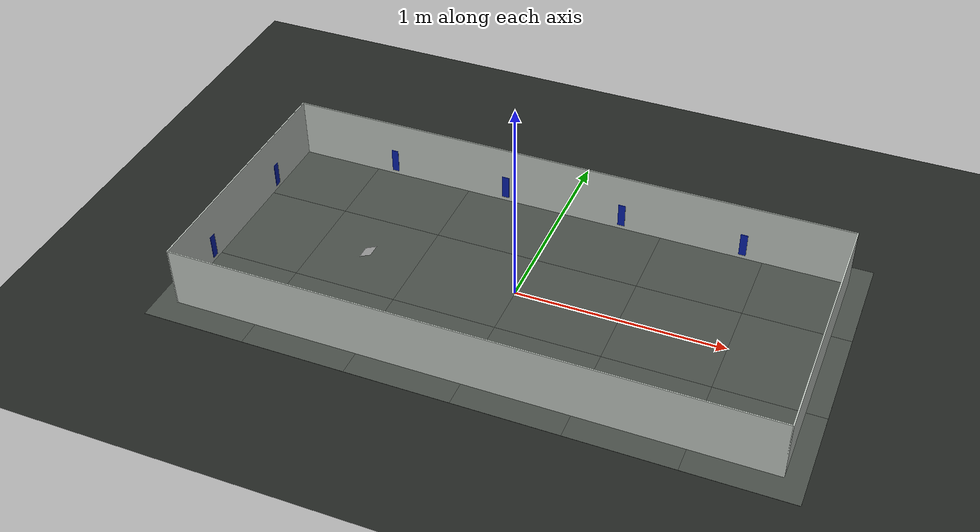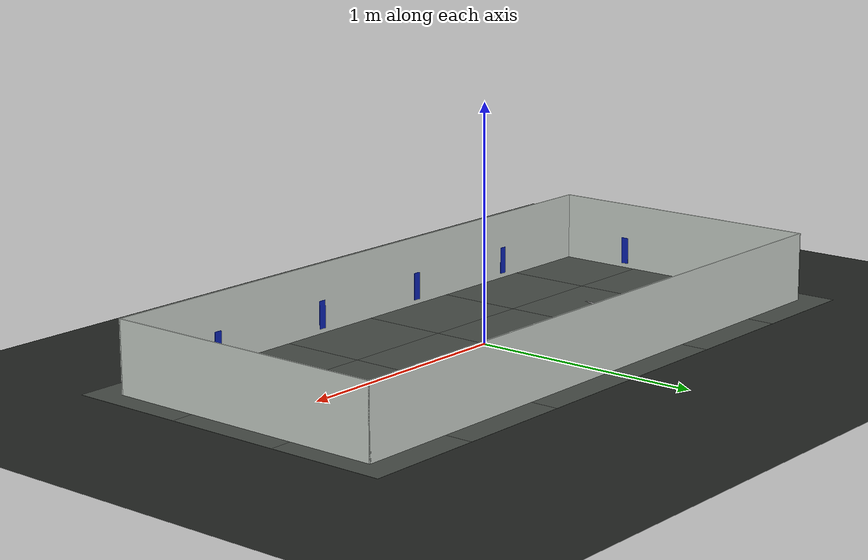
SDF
<sdf version="1.6">
 <world name="map_v2_fleet">
  <plugin filename="gz-sim-physics-system" name="gz::sim::systems::Physics">
   <engine><filename>gz-physics-dartsim-plugin</filename></engine>
  </plugin>
  <plugin filename="gz-sim-user-commands-system" name="gz::sim::systems::UserCommands"/>
  <plugin filename="gz-sim-scene-broadcaster-system" name="gz::sim::systems::SceneBroadcaster"/>
  <plugin filename="gz-sim-sensors-system" name="gz::sim::systems::Sensors">
   <render_engine>ogre2</render_engine>
  </plugin>
  <plugin filename="gz-sim-imu-system" name="gz::sim::systems::Imu"/>
  <scene><background>0.35 0.30 0.30 1</background></scene>
  <light type="directional" name="sun">
   <cast_shadows>false</cast_shadows>
   <pose>0 0 10 0 0 0</pose>
   <diffuse>0.9 0.9 0.9 1</diffuse>
   <specular>0.2 0.2 0.2 1</specular>
   <direction>-0.4 0.2 -0.9</direction>
  </light>
  <model name="ground_plane">
   <static>true</static>
   <link name="link">
    <collision name="collision">
     <geometry><plane><normal>0 0 1</normal><size>100 100</size></plane></geometry>
    </collision>
    <visual name="visual">
     <geometry><plane><normal>0 0 1</normal><size>100 100</size></plane></geometry>
     <material><ambient>0.13 0.14 0.13 1</ambient><diffuse>0.13 0.14 0.13 1</diffuse></material>
    </visual>
   </link>
  </model>
  <model name="carpet">
   <static>true</static>
   <pose>0 0 0.0003 0 0 0</pose>
   <link name="link">
    <visual name="tile_0_0">
     <pose>-1.250 -0.500 0 0 0 0</pose>
     <geometry><plane><normal>0 0 1</normal><size>0.5 0.5</size></plane></geometry>
     <material>
      <ambient>0.27 0.29 0.27 1</ambient>
      <diffuse>0.27 0.29 0.27 1</diffuse>
      <pbr><metal><albedo_map>model://control/map/map_v2_fleet/textures/carpet_grey.png</albedo_map></metal></pbr>
     </material>
    </visual>
    <visual name="tile_0_1">
     <pose>-1.250 0.000 0 0 0 0</pose>
     <geometry><plane><normal>0 0 1</normal><size>0.5 0.5</size></plane></geometry>
     <material>
      <ambient>0.27 0.29 0.27 1</ambient>
      <diffuse>0.27 0.29 0.27 1</diffuse>
      <pbr><metal><albedo_map>model://control/map/map_v2_fleet/textures/carpet_grey.png</albedo_map></metal></pbr>
     </material>
    </visual>
    <visual name="tile_0_2">
     <pose>-1.250 0.500 0 0 0 0</pose>
     <geometry><plane><normal>0 0 1</normal><size>0.5 0.5</size></plane></geometry>
     <material>
      <ambient>0.27 0.29 0.27 1</ambient>
      <diffuse>0.27 0.29 0.27 1</diffuse>
      <pbr><metal><albedo_map>model://control/map/map_v2_fleet/textures/carpet_grey.png</albedo_map></metal></pbr>
     </material>
    </visual>
    <visual name="tile_1_0">
     <pose>-0.750 -0.500 0 0 0 0</pose>
     <geometry><plane><normal>0 0 1</normal><size>0.5 0.5</size></plane></geometry>
     <material>
      <ambient>0.27 0.29 0.27 1</ambient>
      <diffuse>0.27 0.29 0.27 1</diffuse>
      <pbr><metal><albedo_map>model://control/map/map_v2_fleet/textures/carpet_grey.png</albedo_map></metal></pbr>
     </material>
    </visual>
    <visual name="tile_1_1">
     <pose>-0.750 0.000 0 0 0 0</pose>
     <geometry><plane><normal>0 0 1</normal><size>0.5 0.5</size></plane></geometry>
     <material>
      <ambient>0.27 0.29 0.27 1</ambient>
      <diffuse>0.27 0.29 0.27 1</diffuse>
      <pbr><metal><albedo_map>model://control/map/map_v2_fleet/textures/carpet_grey.png</albedo_map></metal></pbr>
     </material>
    </visual>
    <visual name="tile_1_2">
     <pose>-0.750 0.500 0 0 0 0</pose>
     <geometry><plane><normal>0 0 1</normal><size>0.5 0.5</size></plane></geometry>
     <material>
      <ambient>0.27 0.29 0.27 1</ambient>
      <diffuse>0.27 0.29 0.27 1</diffuse>
      <pbr><metal><albedo_map>model://control/map/map_v2_fleet/textures/carpet_grey.png</albedo_map></metal></pbr>
     </material>
    </visual>
    <visual name="tile_2_0">
     <pose>-0.250 -0.500 0 0 0 0</pose>
     <geometry><plane><normal>0 0 1</normal><size>0.5 0.5</size></plane></geometry>
     <material>
      <ambient>0.27 0.29 0.27 1</ambient>
      <diffuse>0.27 0.29 0.27 1</diffuse>
      <pbr><metal><albedo_map>model://control/map/map_v2_fleet/textures/carpet_grey.png</albedo_map></metal></pbr>
     </material>
    </visual>
    <visual name="tile_2_1">
     <pose>-0.250 0.000 0 0 0 0</pose>
     <geometry><plane><normal>0 0 1</normal><size>0.5 0.5</size></plane></geometry>
     <material>
      <ambient>0.27 0.29 0.27 1</ambient>
      <diffuse>0.27 0.29 0.27 1</diffuse>
      <pbr><metal><albedo_map>model://control/map/map_v2_fleet/textures/carpet_grey.png</albedo_map></metal></pbr>
     </material>
    </visual>
    <visual name="tile_2_2">
     <pose>-0.250 0.500 0 0 0 0</pose>
     <geometry><plane><normal>0 0 1</normal><size>0.5 0.5</size></plane></geometry>
     <material>
      <ambient>0.27 0.29 0.27 1</ambient>
      <diffuse>0.27 0.29 0.27 1</diffuse>
      <pbr><metal><albedo_map>model://control/map/map_v2_fleet/textures/carpet_grey.png</albedo_map></metal></pbr>
     </material>
    </visual>
    <visual name="tile_3_0">
     <pose>0.250 -0.500 0 0 0 0</pose>
     <geometry><plane><normal>0 0 1</normal><size>0.5 0.5</size></plane></geometry>
     <material>
      <ambient>0.27 0.29 0.27 1</ambient>
      <diffuse>0.27 0.29 0.27 1</diffuse>
      <pbr><metal><albedo_map>model://control/map/map_v2_fleet/textures/carpet_grey.png</albedo_map></metal></pbr>
     </material>
    </visual>
    <visual name="tile_3_1">
     <pose>0.250 0.000 0 0 0 0</pose>
     <geometry><plane><normal>0 0 1</normal><size>0.5 0.5</size></plane></geometry>
     <material>
      <ambient>0.27 0.29 0.27 1</ambient>
      <diffuse>0.27 0.29 0.27 1</diffuse>
      <pbr><metal><albedo_map>model://control/map/map_v2_fleet/textures/carpet_grey.png</albedo_map></metal></pbr>
     </material>
    </visual>
    <visual name="tile_3_2">
     <pose>0.250 0.500 0 0 0 0</pose>
     <geometry><plane><normal>0 0 1</normal><size>0.5 0.5</size></plane></geometry>
     <material>
      <ambient>0.27 0.29 0.27 1</ambient>
      <diffuse>0.27 0.29 0.27 1</diffuse>
      <pbr><metal><albedo_map>model://control/map/map_v2_fleet/textures/carpet_grey.png</albedo_map></metal></pbr>
     </material>
    </visual>
    <visual name="tile_4_0">
     <pose>0.750 -0.500 0 0 0 0</pose>
     <geometry><plane><normal>0 0 1</normal><size>0.5 0.5</size></plane></geometry>
     <material>
      <ambient>0.27 0.29 0.27 1</ambient>
      <diffuse>0.27 0.29 0.27 1</diffuse>
      <pbr><metal><albedo_map>model://control/map/map_v2_fleet/textures/carpet_grey.png</albedo_map></metal></pbr>
     </material>
    </visual>
    <visual name="tile_4_1">
     <pose>0.750 0.000 0 0 0 0</pose>
     <geometry><plane><normal>0 0 1</normal><size>0.5 0.5</size></plane></geometry>
     <material>
      <ambient>0.27 0.29 0.27 1</ambient>
      <diffuse>0.27 0.29 0.27 1</diffuse>
      <pbr><metal><albedo_map>model://control/map/map_v2_fleet/textures/carpet_grey.png</albedo_map></metal></pbr>
     </material>
    </visual>
    <visual name="tile_4_2">
     <pose>0.750 0.500 0 0 0 0</pose>
     <geometry><plane><normal>0 0 1</normal><size>0.5 0.5</size></plane></geometry>
     <material>
      <ambient>0.27 0.29 0.27 1</ambient>
      <diffuse>0.27 0.29 0.27 1</diffuse>
      <pbr><metal><albedo_map>model://control/map/map_v2_fleet/textures/carpet_grey.png</albedo_map></metal></pbr>
     </material>
    </visual>
    <visual name="tile_5_0">
     <pose>1.250 -0.500 0 0 0 0</pose>
     <geometry><plane><normal>0 0 1</normal><size>0.5 0.5</size></plane></geometry>
     <material>
      <ambient>0.27 0.29 0.27 1</ambient>
      <diffuse>0.27 0.29 0.27 1</diffuse>
      <pbr><metal><albedo_map>model://control/map/map_v2_fleet/textures/carpet_grey.png</albedo_map></metal></pbr>
     </material>
    </visual>
    <visual name="tile_5_1">
     <pose>1.250 0.000 0 0 0 0</pose>
     <geometry><plane><normal>0 0 1</normal><size>0.5 0.5</size></plane></geometry>
     <material>
      <ambient>0.27 0.29 0.27 1</ambient>
      <diffuse>0.27 0.29 0.27 1</diffuse>
      <pbr><metal><albedo_map>model://control/map/map_v2_fleet/textures/carpet_grey.png</albedo_map></metal></pbr>
     </material>
    </visual>
    <visual name="tile_5_2">
     <pose>1.250 0.500 0 0 0 0</pose>
     <geometry><plane><normal>0 0 1</normal><size>0.5 0.5</size></plane></geometry>
     <material>
      <ambient>0.27 0.29 0.27 1</ambient>
      <diffuse>0.27 0.29 0.27 1</diffuse>
      <pbr><metal><albedo_map>model://control/map/map_v2_fleet/textures/carpet_grey.png</albedo_map></metal></pbr>
     </material>
    </visual>
   </link>
  </model>
  <model name="wall_tape">
   <static>true</static>
   <link name="link">
    <visual name="tape_00_0">
     <pose>-0.90000 0.62400 0.08000 0 0 0</pose>
     <geometry><box><size>0.035 0.002 0.12</size></box></geometry>
     <material><ambient>0.05 0.15 0.75 1</ambient><diffuse>0.05 0.15 0.75 1</diffuse></material>
    </visual>
    <visual name="tape_00_1">
     <pose>-0.30000 0.62400 0.08000 0 0 0</pose>
     <geometry><box><size>0.035 0.002 0.12</size></box></geometry>
     <material><ambient>0.05 0.15 0.75 1</ambient><diffuse>0.05 0.15 0.75 1</diffuse></material>
    </visual>
    <visual name="tape_00_2">
     <pose>0.30000 0.62400 0.08000 0 0 0</pose>
     <geometry><box><size>0.035 0.002 0.12</size></box></geometry>
     <material><ambient>0.05 0.15 0.75 1</ambient><diffuse>0.05 0.15 0.75 1</diffuse></material>
    </visual>
    <visual name="tape_00_3">
     <pose>0.90000 0.62400 0.08000 0 0 0</pose>
     <geometry><box><size>0.035 0.002 0.12</size></box></geometry>
     <material><ambient>0.05 0.15 0.75 1</ambient><diffuse>0.05 0.15 0.75 1</diffuse></material>
    </visual>
    <visual name="tape_01_0">
     <pose>-0.90000 -0.62400 0.08000 0 0 0</pose>
     <geometry><box><size>0.035 0.002 0.12</size></box></geometry>
     <material><ambient>0.05 0.15 0.75 1</ambient><diffuse>0.05 0.15 0.75 1</diffuse></material>
    </visual>
    <visual name="tape_01_1">
     <pose>-0.30000 -0.62400 0.08000 0 0 0</pose>
     <geometry><box><size>0.035 0.002 0.12</size></box></geometry>
     <material><ambient>0.05 0.15 0.75 1</ambient><diffuse>0.05 0.15 0.75 1</diffuse></material>
    </visual>
    <visual name="tape_01_2">
     <pose>0.30000 -0.62400 0.08000 0 0 0</pose>
     <geometry><box><size>0.035 0.002 0.12</size></box></geometry>
     <material><ambient>0.05 0.15 0.75 1</ambient><diffuse>0.05 0.15 0.75 1</diffuse></material>
    </visual>
    <visual name="tape_01_3">
     <pose>0.90000 -0.62400 0.08000 0 0 0</pose>
     <geometry><box><size>0.035 0.002 0.12</size></box></geometry>
     <material><ambient>0.05 0.15 0.75 1</ambient><diffuse>0.05 0.15 0.75 1</diffuse></material>
    </visual>
    <visual name="tape_02_0">
     <pose>-1.39900 -0.30000 0.08000 0 0 0</pose>
     <geometry><box><size>0.002 0.035 0.12</size></box></geometry>
     <material><ambient>0.05 0.15 0.75 1</ambient><diffuse>0.05 0.15 0.75 1</diffuse></material>
    </visual>
    <visual name="tape_02_1">
     <pose>-1.39900 0.30000 0.08000 0 0 0</pose>
     <geometry><box><size>0.002 0.035 0.12</size></box></geometry>
     <material><ambient>0.05 0.15 0.75 1</ambient><diffuse>0.05 0.15 0.75 1</diffuse></material>
    </visual>
    <visual name="tape_03_0">
     <pose>1.39900 -0.30000 0.08000 0 0 0</pose>
     <geometry><box><size>0.002 0.035 0.12</size></box></geometry>
     <material><ambient>0.05 0.15 0.75 1</ambient><diffuse>0.05 0.15 0.75 1</diffuse></material>
    </visual>
    <visual name="tape_03_1">
     <pose>1.39900 0.30000 0.08000 0 0 0</pose>
     <geometry><box><size>0.002 0.035 0.12</size></box></geometry>
     <material><ambient>0.05 0.15 0.75 1</ambient><diffuse>0.05 0.15 0.75 1</diffuse></material>
    </visual>
   </link>
  </model>
  <model name="track_v2_fleet">
   <static>true</static>
   <link name="link">
    <collision name="wall_00_col">
     <pose>0.00000 0.62750 0.15000 0 0 0</pose>
     <geometry><box><size>2.81000 0.00500 0.30000</size></box></geometry>
     <surface><friction><ode><mu>0.9</mu><mu2>0.9</mu2></ode></friction></surface>
    </collision>
    <visual name="wall_00_vis">
     <pose>0.00000 0.62750 0.15000 0 0 0</pose>
     <geometry><box><size>2.81000 0.00500 0.30000</size></box></geometry>
     <material>
      <ambient>0.85 0.88 0.85 1</ambient>
      <diffuse>0.85 0.88 0.85 1</diffuse>
      <emissive>0.55 0.57 0.55 1</emissive>
     </material>
    </visual>
    <collision name="wall_01_col">
     <pose>0.00000 -0.62750 0.15000 0 0 0</pose>
     <geometry><box><size>2.81000 0.00500 0.30000</size></box></geometry>
     <surface><friction><ode><mu>0.9</mu><mu2>0.9</mu2></ode></friction></surface>
    </collision>
    <visual name="wall_01_vis">
     <pose>0.00000 -0.62750 0.15000 0 0 0</pose>
     <geometry><box><size>2.81000 0.00500 0.30000</size></box></geometry>
     <material>
      <ambient>0.85 0.88 0.85 1</ambient>
      <diffuse>0.85 0.88 0.85 1</diffuse>
      <emissive>0.55 0.57 0.55 1</emissive>
     </material>
    </visual>
    <collision name="wall_02_col">
     <pose>-1.40250 0.00000 0.15000 0 0 0</pose>
     <geometry><box><size>0.00500 1.26000 0.30000</size></box></geometry>
     <surface><friction><ode><mu>0.9</mu><mu2>0.9</mu2></ode></friction></surface>
    </collision>
    <visual name="wall_02_vis">
     <pose>-1.40250 0.00000 0.15000 0 0 0</pose>
     <geometry><box><size>0.00500 1.26000 0.30000</size></box></geometry>
     <material>
      <ambient>0.85 0.88 0.85 1</ambient>
      <diffuse>0.85 0.88 0.85 1</diffuse>
      <emissive>0.55 0.57 0.55 1</emissive>
     </material>
    </visual>
    <collision name="wall_03_col">
     <pose>1.40250 0.00000 0.15000 0 0 0</pose>
     <geometry><box><size>0.00500 1.26000 0.30000</size></box></geometry>
     <surface><friction><ode><mu>0.9</mu><mu2>0.9</mu2></ode></friction></surface>
    </collision>
    <visual name="wall_03_vis">
     <pose>1.40250 0.00000 0.15000 0 0 0</pose>
     <geometry><box><size>0.00500 1.26000 0.30000</size></box></geometry>
     <material>
      <ambient>0.85 0.88 0.85 1</ambient>
      <diffuse>0.85 0.88 0.85 1</diffuse>
      <emissive>0.55 0.57 0.55 1</emissive>
     </material>
    </visual>
   </link>
  </model>
  <model name="dock_tag_7">
   <static>true</static>
   <link name="link">
    <visual name="face">
     <pose>-0.74979 0 0.01409 0 -0.436332 0</pose>
     <geometry><plane><normal>0 0 1</normal><size>0.06667 0.06667</size></plane></geometry>
     <material>
      <ambient>0.6 0.6 0.6 1</ambient>
      <diffuse>0.6 0.6 0.6 1</diffuse>
      <pbr><metal><albedo_map>model://control/map/map_v2_fleet/textures/dock_tag_7.png</albedo_map></metal></pbr>
     </material>
    </visual>
   </link>
  </model>
 </world>
</sdf>
